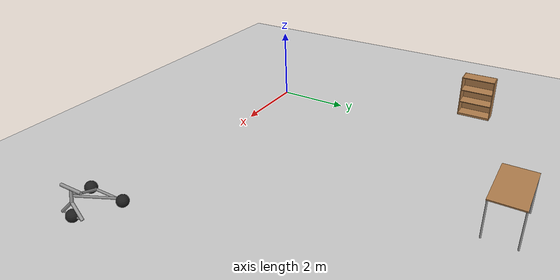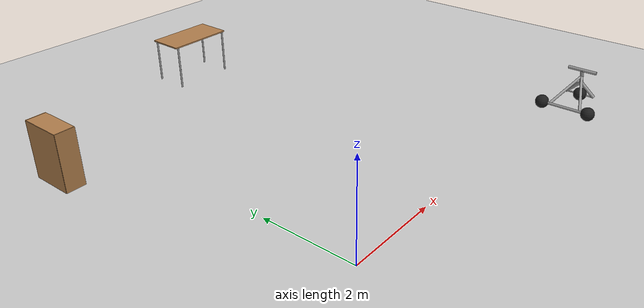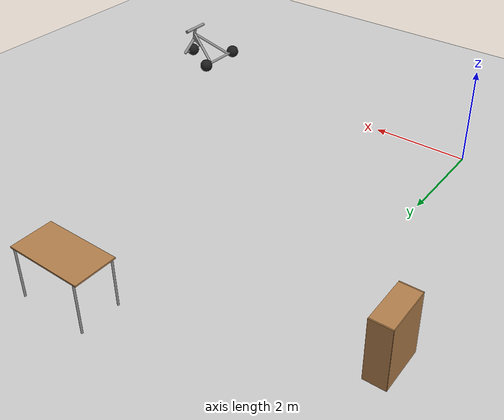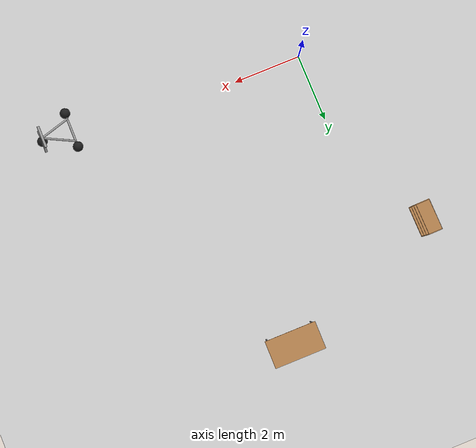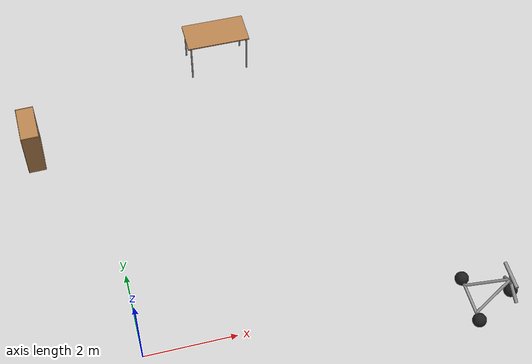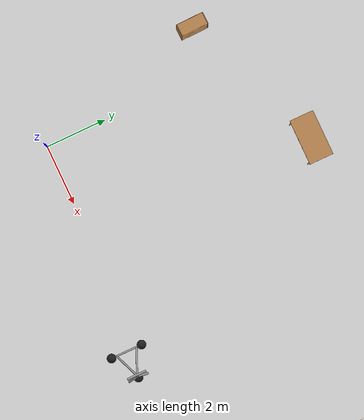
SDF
<sdf version="1.6">
 <world name="Apartment 1023">
  <model name="ground_plane">
   <static>1</static>
   <link name="link">
    <collision name="collision">
     <geometry><plane><normal>0 0 1</normal><size>100 100</size></plane></geometry>
     <surface><friction><ode><mu>100</mu><mu2>50</mu2></ode></friction></surface>
    </collision>
    <visual name="visual">
     <cast_shadows>0</cast_shadows>
     <geometry><plane><normal>0 0 1</normal><size>100 100</size></plane></geometry>
     <material>
      <script><uri>file://media/materials/scripts/gazebo.material</uri><name>Gazebo/Grey</name></script>
     </material>
    </visual>
   </link>
  </model>
  <model name="bookshelf">
   <static>1</static>
   <link name="link">
    <inertial><mass>1</mass></inertial>
    <collision name="back">
     <pose>0 0.005 0.6 0 -0 0</pose>
     <geometry><box><size>0.9 0.01 1.2</size></box></geometry>
    </collision>
    <visual name="visual1">
     <pose>0 0.005 0.6 0 -0 0</pose>
     <geometry><box><size>0.9 0.01 1.2</size></box></geometry>
     <material>
      <script><uri>file://media/materials/scripts/gazebo.material</uri><name>Gazebo/Wood</name></script>
     </material>
    </visual>
    <collision name="left_side">
     <pose>0.45 -0.195 0.6 0 -0 0</pose>
     <geometry><box><size>0.02 0.4 1.2</size></box></geometry>
    </collision>
    <visual name="visual2">
     <pose>0.45 -0.195 0.6 0 -0 0</pose>
     <geometry><box><size>0.02 0.4 1.2</size></box></geometry>
     <material>
      <script><uri>file://media/materials/scripts/gazebo.material</uri><name>Gazebo/Wood</name></script>
     </material>
    </visual>
    <collision name="right_side">
     <pose>-0.45 -0.195 0.6 0 -0 0</pose>
     <geometry><box><size>0.02 0.4 1.2</size></box></geometry>
    </collision>
    <visual name="visual3">
     <pose>-0.45 -0.195 0.6 0 -0 0</pose>
     <geometry><box><size>0.02 0.4 1.2</size></box></geometry>
     <material>
      <script><uri>file://media/materials/scripts/gazebo.material</uri><name>Gazebo/Wood</name></script>
     </material>
    </visual>
    <collision name="bottom">
     <pose>0 -0.195 0.03 0 -0 0</pose>
     <geometry><box><size>0.88 0.4 0.06</size></box></geometry>
    </collision>
    <visual name="visual4">
     <pose>0 -0.195 0.03 0 -0 0</pose>
     <geometry><box><size>0.88 0.4 0.06</size></box></geometry>
     <material>
      <script><uri>file://media/materials/scripts/gazebo.material</uri><name>Gazebo/Wood</name></script>
     </material>
    </visual>
    <collision name="top">
     <pose>0 -0.195 1.19 0 -0 0</pose>
     <geometry><box><size>0.88 0.4 0.02</size></box></geometry>
    </collision>
    <visual name="visual5">
     <pose>0 -0.195 1.19 0 -0 0</pose>
     <geometry><box><size>0.88 0.4 0.02</size></box></geometry>
     <material>
      <script><uri>file://media/materials/scripts/gazebo.material</uri><name>Gazebo/Wood</name></script>
     </material>
    </visual>
    <collision name="low_shelf">
     <pose>0 -0.195 0.43 0 -0 0</pose>
     <geometry><box><size>0.88 0.4 0.02</size></box></geometry>
    </collision>
    <visual name="visual6">
     <pose>0 -0.195 0.43 0 -0 0</pose>
     <geometry><box><size>0.88 0.4 0.02</size></box></geometry>
     <material>
      <script><uri>file://media/materials/scripts/gazebo.material</uri><name>Gazebo/Wood</name></script>
     </material>
    </visual>
    <collision name="high_shelf">
     <pose>0 -0.195 0.8 0 -0 0</pose>
     <geometry><box><size>0.88 0.4 0.02</size></box></geometry>
    </collision>
    <visual name="visual7">
     <pose>0 -0.195 0.8 0 -0 0</pose>
     <geometry><box><size>0.88 0.4 0.02</size></box></geometry>
     <material>
      <script><uri>file://media/materials/scripts/gazebo.material</uri><name>Gazebo/Wood</name></script>
     </material>
    </visual>
   </link>
   <pose>-1.66224 5.73475 0 0 -0 1.58912</pose>
  </model>
  <model name="trisphere_cycle">
   <link name="frame">
    <pose>-0.408559 0 0.385023 0 -0.522021 0</pose>
    <inertial>
     <mass>10</mass>
     <inertia><ixx>0.228</ixx><iyy>0.743521</iyy><izz>0.965521</izz><ixy>0</ixy><ixz>0</ixz><iyz>0</iyz></inertia>
    </inertial>
    <collision name="axle_collision">
     <pose>-0.471335 0 0 1.5708 -0 0</pose>
     <geometry><cylinder><length>1.03923</length><radius>0.03</radius></cylinder></geometry>
    </collision>
    <visual name="axle_visual">
     <pose>-0.471335 0 0 1.5708 -0 0</pose>
     <geometry><cylinder><length>1.03923</length><radius>0.03</radius></cylinder></geometry>
     <material>
      <script><uri>file://media/materials/scripts/gazebo.material</uri><name>Gazebo/Grey</name></script>
     </material>
    </visual>
    <collision name="frame_left_collision">
     <pose>0 0.171552 0 -2.79253 1.57079 3.14159</pose>
     <geometry><cylinder><length>1.00317</length><radius>0.03</radius></cylinder></geometry>
    </collision>
    <visual name="frame_left_visual">
     <pose>0 0.171552 0 -2.79253 1.57079 3.14159</pose>
     <geometry><cylinder><length>1.00317</length><radius>0.03</radius></cylinder></geometry>
     <material>
      <script><uri>file://media/materials/scripts/gazebo.material</uri><name>Gazebo/Grey</name></script>
     </material>
    </visual>
    <collision name="frame_right_collision">
     <pose>0 -0.171552 0 2.79253 1.57079 -3.14159</pose>
     <geometry><cylinder><length>1.00317</length><radius>0.03</radius></cylinder></geometry>
    </collision>
    <visual name="frame_right_visual">
     <pose>0 -0.171552 0 2.79253 1.57079 -3.14159</pose>
     <geometry><cylinder><length>1.00317</length><radius>0.03</radius></cylinder></geometry>
     <material>
      <script><uri>file://media/materials/scripts/gazebo.material</uri><name>Gazebo/Grey</name></script>
     </material>
    </visual>
   </link>
   <link name="fork">
    <pose>0.041441 0 0.385023 0 -0.174533 0</pose>
    <inertial>
     <mass>3</mass>
     <inertia>
      <ixx>0.158203</ixx>
      <iyy>0.0583594</iyy>
      <izz>0.102656</izz>
      <ixy>0</ixy>
      <ixz>0</ixz>
      <iyz>0</iyz>
     </inertia>
    </inertial>
    <collision name="handlebars_collision">
     <pose>0 0 0.397748 1.5708 -0 0</pose>
     <geometry><cylinder><length>0.636396</length><radius>0.0375</radius></cylinder></geometry>
    </collision>
    <visual name="handlebars_visual">
     <pose>0 0 0.397748 1.5708 -0 0</pose>
     <geometry><cylinder><length>0.636396</length><radius>0.0375</radius></cylinder></geometry>
     <material>
      <script><uri>file://media/materials/scripts/gazebo.material</uri><name>Gazebo/Grey</name></script>
     </material>
    </visual>
    <collision name="headtube_collision">
     <pose>0 0 0.238649 0 -0 0</pose>
     <geometry><cylinder><length>0.318198</length><radius>0.0375</radius></cylinder></geometry>
    </collision>
    <visual name="headtube_visual">
     <pose>0 0 0.238649 0 -0 0</pose>
     <geometry><cylinder><length>0.318198</length><radius>0.0375</radius></cylinder></geometry>
     <material>
      <script><uri>file://media/materials/scripts/gazebo.material</uri><name>Gazebo/Grey</name></script>
     </material>
    </visual>
    <collision name="spindle_collision">
     <pose>0 0 -0.238649 1.5708 -0 0</pose>
     <geometry><cylinder><length>0.636396</length><radius>0.015</radius></cylinder></geometry>
    </collision>
    <visual name="spindle_visual">
     <pose>0 0 -0.238649 1.5708 -0 0</pose>
     <geometry><cylinder><length>0.636396</length><radius>0.015</radius></cylinder></geometry>
     <material>
      <script><uri>file://media/materials/scripts/gazebo.material</uri><name>Gazebo/Grey</name></script>
     </material>
    </visual>
    <collision name="fork_left_collision">
     <pose>0 0.159099 -0.07955 0.785398 -0 0</pose>
     <geometry><cylinder><length>0.45</length><radius>0.0375</radius></cylinder></geometry>
    </collision>
    <visual name="fork_left_visual">
     <pose>0 0.159099 -0.07955 0.785398 -0 0</pose>
     <geometry><cylinder><length>0.45</length><radius>0.0375</radius></cylinder></geometry>
     <material>
      <script><uri>file://media/materials/scripts/gazebo.material</uri><name>Gazebo/Grey</name></script>
     </material>
    </visual>
    <collision name="fork_right_collision">
     <pose>0 -0.159099 -0.07955 -0.785398 0 0</pose>
     <geometry><cylinder><length>0.45</length><radius>0.0375</radius></cylinder></geometry>
    </collision>
    <visual name="fork_right_visual">
     <pose>0 -0.159099 -0.07955 -0.785398 0 0</pose>
     <geometry><cylinder><length>0.45</length><radius>0.0375</radius></cylinder></geometry>
     <material>
      <script><uri>file://media/materials/scripts/gazebo.material</uri><name>Gazebo/Grey</name></script>
     </material>
    </visual>
   </link>
   <link name="wheel_front">
    <pose>0.082882 0 0.15 0 -0 0</pose>
    <inertial>
     <mass>0.5</mass>
     <inertia><ixx>0.0045</ixx><iyy>0.0045</iyy><izz>0.0045</izz><ixy>0</ixy><ixz>0</ixz><iyz>0</iyz></inertia>
    </inertial>
    <collision name="collision">
     <geometry><sphere><radius>0.15</radius></sphere></geometry>
     <surface><contact><ode><kp>1e+08</kp><kd>1</kd><min_depth>0.0005</min_depth></ode></contact></surface>
    </collision>
    <visual name="visual">
     <geometry><sphere><radius>0.15</radius></sphere></geometry>
     <material>
      <script><uri>file://media/materials/scripts/gazebo.material</uri><name>Gazebo/Black</name></script>
     </material>
    </visual>
   </link>
   <joint name="wheel_front_steer" type="revolute">
    <parent>frame</parent>
    <child>fork</child>
    <axis>
     <xyz>0 0 1</xyz>
     <limit><lower>-0.959931</lower><upper>0.959931</upper></limit>
     <use_parent_model_frame>0</use_parent_model_frame>
     <dynamics><spring_reference>0</spring_reference><spring_stiffness>0</spring_stiffness></dynamics>
    </axis>
   </joint>
   <joint name="wheel_front_spin" type="revolute">
    <parent>fork</parent>
    <child>wheel_front</child>
    <axis>
     <xyz>0 1 0</xyz>
     <use_parent_model_frame>0</use_parent_model_frame>
     <limit><lower>-1e+16</lower><upper>1e+16</upper></limit>
     <dynamics><spring_reference>0</spring_reference><spring_stiffness>0</spring_stiffness></dynamics>
    </axis>
   </joint>
   <link name="wheel_rear_left">
    <pose>-0.817118 0.519615 0.15 0 -0 0</pose>
    <inertial>
     <mass>0.5</mass>
     <inertia><ixx>0.0045</ixx><iyy>0.0045</iyy><izz>0.0045</izz><ixy>0</ixy><ixz>0</ixz><iyz>0</iyz></inertia>
    </inertial>
    <collision name="collision">
     <geometry><sphere><radius>0.15</radius></sphere></geometry>
     <surface><contact><ode><kp>1e+08</kp><kd>1</kd><min_depth>0.0005</min_depth></ode></contact></surface>
    </collision>
    <visual name="visual">
     <geometry><sphere><radius>0.15</radius></sphere></geometry>
     <material>
      <script><uri>file://media/materials/scripts/gazebo.material</uri><name>Gazebo/Black</name></script>
     </material>
    </visual>
   </link>
   <joint name="wheel_rear_left_spin" type="revolute">
    <parent>frame</parent>
    <child>wheel_rear_left</child>
    <axis>
     <xyz>0 1 0</xyz>
     <use_parent_model_frame>0</use_parent_model_frame>
     <limit><lower>-1e+16</lower><upper>1e+16</upper></limit>
     <dynamics><spring_reference>0</spring_reference><spring_stiffness>0</spring_stiffness></dynamics>
    </axis>
   </joint>
   <link name="wheel_rear_right">
    <pose>-0.817118 -0.519615 0.15 0 -0 0</pose>
    <inertial>
     <mass>0.5</mass>
     <inertia><ixx>0.0045</ixx><iyy>0.0045</iyy><izz>0.0045</izz><ixy>0</ixy><ixz>0</ixz><iyz>0</iyz></inertia>
    </inertial>
    <collision name="collision">
     <geometry><sphere><radius>0.15</radius></sphere></geometry>
     <surface><contact><ode><kp>1e+08</kp><kd>1</kd><min_depth>0.0005</min_depth></ode></contact></surface>
    </collision>
    <visual name="visual">
     <geometry><sphere><radius>0.15</radius></sphere></geometry>
     <material>
      <script><uri>file://media/materials/scripts/gazebo.material</uri><name>Gazebo/Black</name></script>
     </material>
    </visual>
   </link>
   <joint name="wheel_rear_right_spin" type="revolute">
    <parent>frame</parent>
    <child>wheel_rear_right</child>
    <axis>
     <xyz>0 1 0</xyz>
     <use_parent_model_frame>0</use_parent_model_frame>
     <limit><lower>-1e+16</lower><upper>1e+16</upper></limit>
     <dynamics><spring_reference>0</spring_reference><spring_stiffness>0</spring_stiffness></dynamics>
    </axis>
   </joint>
   <pose>7.73732 -0.454834 -0.000501 0 1e-06 -0.001046</pose>
  </model>
  <model name="table_1">
   <static>1</static>
   <link name="link">
    <collision name="surface">
     <pose>0 0 1 0 -0 0</pose>
     <geometry><box><size>1.5 0.8 0.03</size></box></geometry>
     <surface><friction><ode><mu>0.6</mu><mu2>0.6</mu2></ode></friction></surface>
    </collision>
    <visual name="visual1">
     <pose>0 0 1 0 -0 0</pose>
     <geometry><box><size>1.5 0.8 0.03</size></box></geometry>
     <material>
      <script><uri>file://media/materials/scripts/gazebo.material</uri><name>Gazebo/Wood</name></script>
     </material>
    </visual>
    <collision name="front_left_leg">
     <pose>0.68 0.38 0.5 0 -0 0</pose>
     <geometry><cylinder><radius>0.02</radius><length>1</length></cylinder></geometry>
    </collision>
    <visual name="front_left_leg">
     <pose>0.68 0.38 0.5 0 -0 0</pose>
     <geometry><cylinder><radius>0.02</radius><length>1</length></cylinder></geometry>
     <material>
      <script><uri>file://media/materials/scripts/gazebo.material</uri><name>Gazebo/Grey</name></script>
     </material>
    </visual>
    <collision name="front_right_leg">
     <pose>0.68 -0.38 0.5 0 -0 0</pose>
     <geometry><cylinder><radius>0.02</radius><length>1</length></cylinder></geometry>
    </collision>
    <visual name="front_right_leg">
     <pose>0.68 -0.38 0.5 0 -0 0</pose>
     <geometry><cylinder><radius>0.02</radius><length>1</length></cylinder></geometry>
     <material>
      <script><uri>file://media/materials/scripts/gazebo.material</uri><name>Gazebo/Grey</name></script>
     </material>
    </visual>
    <collision name="back_right_leg">
     <pose>-0.68 -0.38 0.5 0 -0 0</pose>
     <geometry><cylinder><radius>0.02</radius><length>1</length></cylinder></geometry>
    </collision>
    <visual name="back_right_leg">
     <pose>-0.68 -0.38 0.5 0 -0 0</pose>
     <geometry><cylinder><radius>0.02</radius><length>1</length></cylinder></geometry>
     <material>
      <script><uri>file://media/materials/scripts/gazebo.material</uri><name>Gazebo/Grey</name></script>
     </material>
    </visual>
    <collision name="back_left_leg">
     <pose>-0.68 0.38 0.5 0 -0 0</pose>
     <geometry><cylinder><radius>0.02</radius><length>1</length></cylinder></geometry>
    </collision>
    <visual name="back_left_leg">
     <pose>-0.68 0.38 0.5 0 -0 0</pose>
     <geometry><cylinder><radius>0.02</radius><length>1</length></cylinder></geometry>
     <material>
      <script><uri>file://media/materials/scripts/gazebo.material</uri><name>Gazebo/Grey</name></script>
     </material>
    </visual>
   </link>
   <pose>3.29977 7.62105 0 0 -0 0</pose>
  </model>
 </world>
</sdf>
